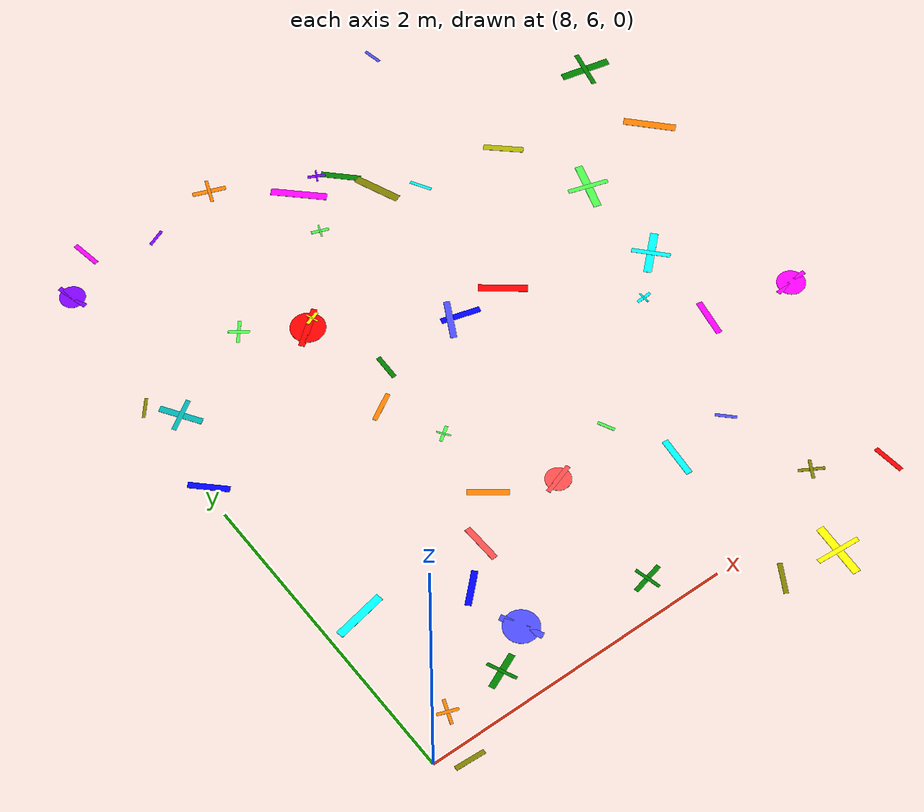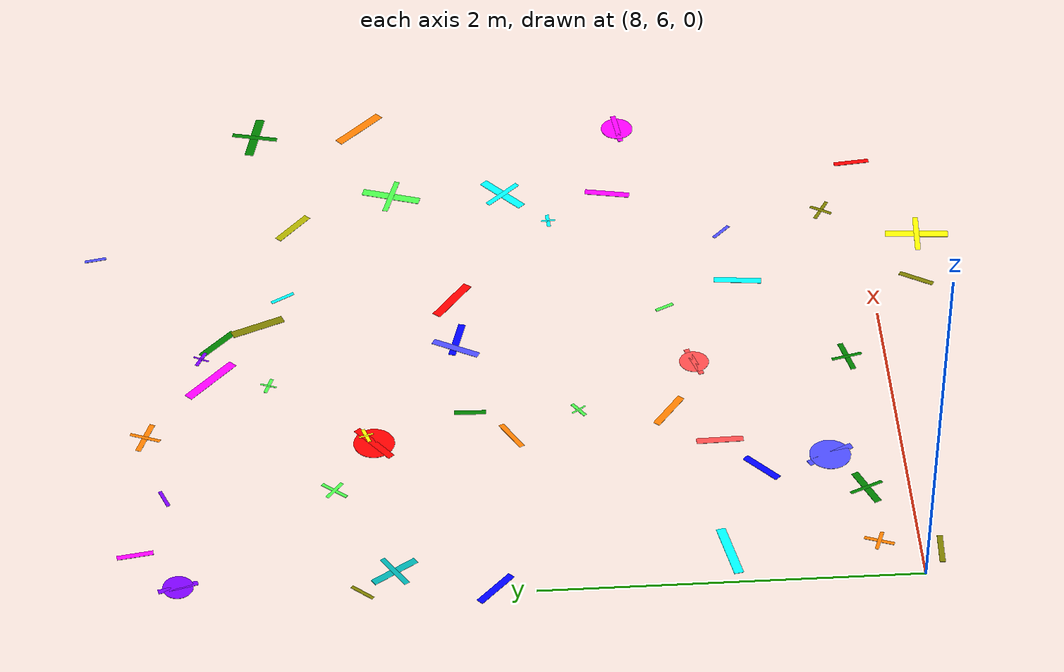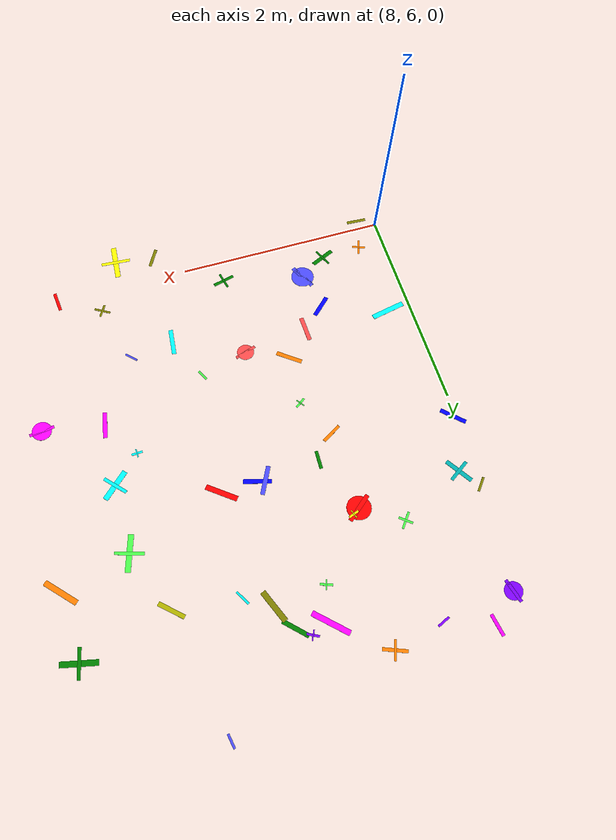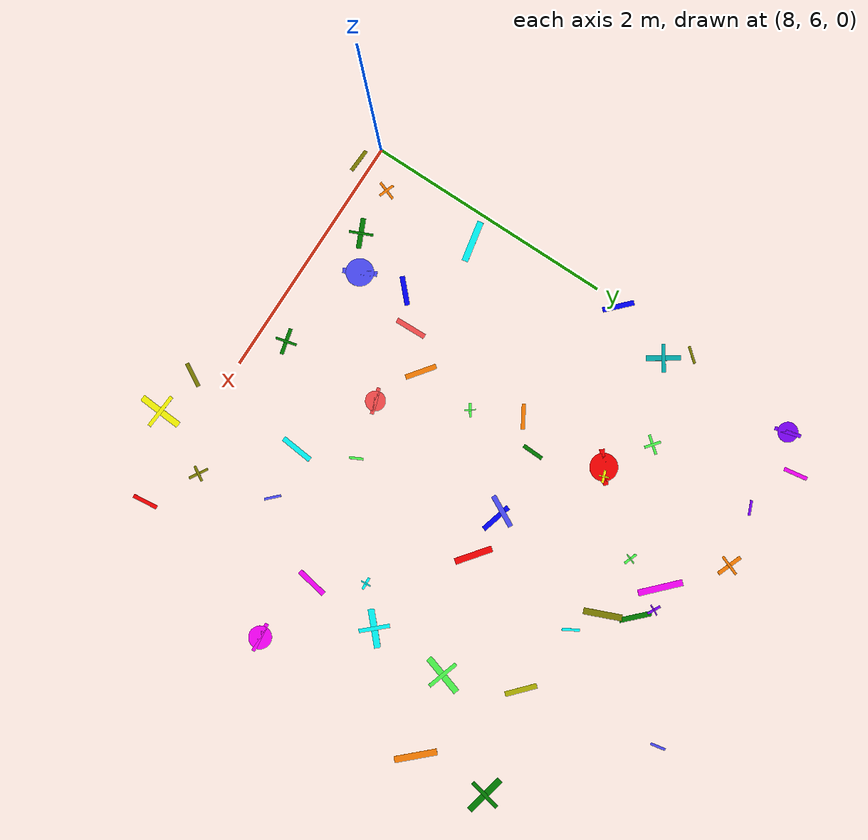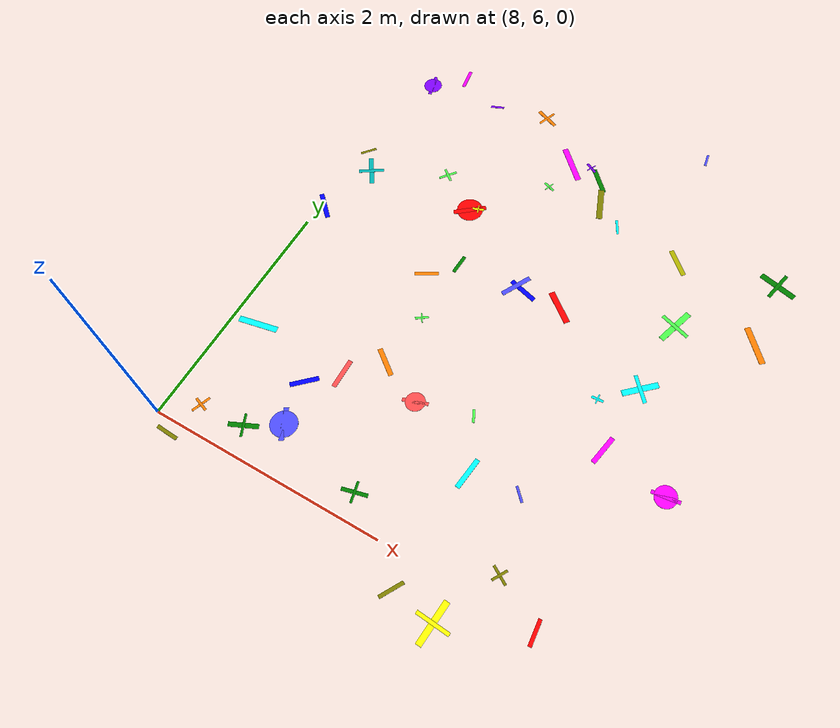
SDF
<sdf version="1.6">
 <world name="default">
  <model name="letter_T_1743">
   <static>true</static>
   <pose>8.25 6.21 0.006 0 0 1.222</pose>
   <link name="link">
    <visual name="visual">
     <geometry><box><size>0.16 0.02 0.002</size></box></geometry>
     <material>
      <ambient>1.0 0.5 0.0 1</ambient>
      <diffuse>1.0 0.5 0.0 1</diffuse>
      <specular>0.1 0.1 0.1 1</specular>
     </material>
    </visual>
    <visual name="visual2">
     <pose>0 0 0.001 0 0 1.57</pose>
     <geometry><box><size>0.13 0.02 0.001</size></box></geometry>
     <material><ambient>1.0 0.5 0.0 1</ambient><diffuse>1.0 0.5 0.0 1</diffuse></material>
    </visual>
   </link>
  </model>
  <model name="letter_N_1744">
   <static>true</static>
   <pose>8.17 5.90 0.007 0 0 3.088</pose>
   <link name="link">
    <visual name="visual">
     <geometry><box><size>0.19 0.03 0.002</size></box></geometry>
     <material>
      <ambient>0.5 0.5 0.0 1</ambient>
      <diffuse>0.5 0.5 0.0 1</diffuse>
      <specular>0.1 0.1 0.1 1</specular>
     </material>
    </visual>
   </link>
  </model>
  <model name="letter_W_1745">
   <static>true</static>
   <pose>8.22 6.99 0.010 0 0 0.194</pose>
   <link name="link">
    <visual name="visual">
     <geometry><box><size>0.33 0.05 0.002</size></box></geometry>
     <material>
      <ambient>0.0 1.0 1.0 1</ambient>
      <diffuse>0.0 1.0 1.0 1</diffuse>
      <specular>0.1 0.1 0.1 1</specular>
     </material>
    </visual>
   </link>
  </model>
  <model name="letter_P_1749">
   <static>true</static>
   <pose>8.03 8.21 0.005 0 0 2.374</pose>
   <link name="link">
    <visual name="visual">
     <geometry><box><size>0.25 0.04 0.002</size></box></geometry>
     <material>
      <ambient>0.0 0.0 1.0 1</ambient>
      <diffuse>0.0 0.0 1.0 1</diffuse>
      <specular>0.1 0.1 0.1 1</specular>
     </material>
    </visual>
   </link>
  </model>
  <model name="letter_H_1750">
   <static>true</static>
   <pose>8.18 8.72 0.010 0 0 5.293</pose>
   <link name="link">
    <visual name="visual">
     <geometry><box><size>0.27 0.04 0.002</size></box></geometry>
     <material>
      <ambient>0.0 0.7 0.7 1</ambient>
      <diffuse>0.0 0.7 0.7 1</diffuse>
      <specular>0.1 0.1 0.1 1</specular>
     </material>
    </visual>
    <visual name="visual2">
     <pose>0 0 0.001 0 0 1.57</pose>
     <geometry><box><size>0.22 0.03 0.001</size></box></geometry>
     <material><ambient>0.0 0.7 0.7 1</ambient><diffuse>0.0 0.7 0.7 1</diffuse></material>
    </visual>
   </link>
  </model>
  <model name="letter_U_1752">
   <static>true</static>
   <pose>8.04 8.89 0.010 0 0 0.874</pose>
   <link name="link">
    <visual name="visual">
     <geometry><box><size>0.14 0.02 0.002</size></box></geometry>
     <material>
      <ambient>0.5 0.5 0.0 1</ambient>
      <diffuse>0.5 0.5 0.0 1</diffuse>
      <specular>0.1 0.1 0.1 1</specular>
     </material>
    </visual>
   </link>
  </model>
  <model name="letter_P_1754">
   <static>true</static>
   <pose>8.38 10.05 0.008 0 0 4.869</pose>
   <link name="link">
    <visual name="visual">
     <geometry><box><size>0.19 0.03 0.002</size></box></geometry>
     <material>
      <ambient>1.0 0.0 1.0 1</ambient>
      <diffuse>1.0 0.0 1.0 1</diffuse>
      <specular>0.1 0.1 0.1 1</specular>
     </material>
    </visual>
   </link>
  </model>
  <model name="letter_O_1755">
   <static>true</static>
   <pose>8.14 9.83 0.004 0 0 4.973</pose>
   <link name="link">
    <visual name="visual">
     <geometry><box><size>0.21 0.03 0.002</size></box></geometry>
     <material>
      <ambient>0.5 0.0 1.0 1</ambient>
      <diffuse>0.5 0.0 1.0 1</diffuse>
      <specular>0.1 0.1 0.1 1</specular>
     </material>
    </visual>
    <visual name="visual2">
     <geometry><cylinder><radius>0.08</radius><length>0.002</length></cylinder></geometry>
     <material><ambient>0.5 0.0 1.0 1</ambient><diffuse>0.5 0.0 1.0 1</diffuse></material>
    </visual>
   </link>
  </model>
  <model name="letter_A_1823">
   <static>true</static>
   <pose>8.64 6.23 0.012 0 0 0.420</pose>
   <link name="link">
    <visual name="visual">
     <geometry><box><size>0.24 0.04 0.002</size></box></geometry>
     <material>
      <ambient>0.0 0.5 0.0 1</ambient>
      <diffuse>0.0 0.5 0.0 1</diffuse>
      <specular>0.1 0.1 0.1 1</specular>
     </material>
    </visual>
    <visual name="visual2">
     <pose>0 0 0.001 0 0 1.57</pose>
     <geometry><box><size>0.19 0.02 0.001</size></box></geometry>
     <material><ambient>0.0 0.5 0.0 1</ambient><diffuse>0.0 0.5 0.0 1</diffuse></material>
    </visual>
   </link>
  </model>
  <model name="letter_Q_1824">
   <static>true</static>
   <pose>8.90 6.39 0.010 0 0 2.037</pose>
   <link name="link">
    <visual name="visual">
     <geometry><box><size>0.27 0.04 0.002</size></box></geometry>
     <material>
      <ambient>0.3 0.3 1.0 1</ambient>
      <diffuse>0.3 0.3 1.0 1</diffuse>
      <specular>0.1 0.1 0.1 1</specular>
     </material>
    </visual>
    <visual name="visual2">
     <geometry><cylinder><radius>0.11</radius><length>0.002</length></cylinder></geometry>
     <material><ambient>0.3 0.3 1.0 1</ambient><diffuse>0.3 0.3 1.0 1</diffuse></material>
    </visual>
   </link>
  </model>
  <model name="letter_N_1825">
   <static>true</static>
   <pose>9.29 7.21 0.009 0 0 5.635</pose>
   <link name="link">
    <visual name="visual">
     <geometry><box><size>0.25 0.04 0.002</size></box></geometry>
     <material>
      <ambient>1.0 0.5 0.0 1</ambient>
      <diffuse>1.0 0.5 0.0 1</diffuse>
      <specular>0.1 0.1 0.1 1</specular>
     </material>
    </visual>
   </link>
  </model>
  <model name="letter_V_1826">
   <static>true</static>
   <pose>8.83 6.76 0.003 0 0 0.756</pose>
   <link name="link">
    <visual name="visual">
     <geometry><box><size>0.23 0.04 0.002</size></box></geometry>
     <material>
      <ambient>0.0 0.0 1.0 1</ambient>
      <diffuse>0.0 0.0 1.0 1</diffuse>
      <specular>0.1 0.1 0.1 1</specular>
     </material>
    </visual>
   </link>
  </model>
  <model name="letter_W_1827">
   <static>true</static>
   <pose>9.05 6.96 0.008 0 0 1.599</pose>
   <link name="link">
    <visual name="visual">
     <geometry><box><size>0.25 0.04 0.002</size></box></geometry>
     <material>
      <ambient>1.0 0.3 0.3 1</ambient>
      <diffuse>1.0 0.3 0.3 1</diffuse>
      <specular>0.1 0.1 0.1 1</specular>
     </material>
    </visual>
   </link>
  </model>
  <model name="letter_L_1828">
   <static>true</static>
   <pose>9.33 7.69 0.006 0 0 0.618</pose>
   <link name="link">
    <visual name="visual">
     <geometry><box><size>0.11 0.02 0.002</size></box></geometry>
     <material>
      <ambient>0.3 1.0 0.3 1</ambient>
      <diffuse>0.3 1.0 0.3 1</diffuse>
      <specular>0.1 0.1 0.1 1</specular>
     </material>
    </visual>
    <visual name="visual2">
     <pose>0 0 0.001 0 0 1.57</pose>
     <geometry><box><size>0.09 0.01 0.001</size></box></geometry>
     <material><ambient>0.3 1.0 0.3 1</ambient><diffuse>0.3 1.0 0.3 1</diffuse></material>
    </visual>
   </link>
  </model>
  <model name="letter_W_1829">
   <static>true</static>
   <pose>9.34 8.27 0.011 0 0 1.534</pose>
   <link name="link">
    <visual name="visual">
     <geometry><box><size>0.17 0.03 0.002</size></box></geometry>
     <material>
      <ambient>0.0 0.5 0.0 1</ambient>
      <diffuse>0.0 0.5 0.0 1</diffuse>
      <specular>0.1 0.1 0.1 1</specular>
     </material>
    </visual>
   </link>
  </model>
  <model name="letter_W_1830">
   <static>true</static>
   <pose>9.15 8.06 0.009 0 0 0.534</pose>
   <link name="link">
    <visual name="visual">
     <geometry><box><size>0.20 0.03 0.002</size></box></geometry>
     <material>
      <ambient>1.0 0.5 0.0 1</ambient>
      <diffuse>1.0 0.5 0.0 1</diffuse>
      <specular>0.1 0.1 0.1 1</specular>
     </material>
    </visual>
   </link>
  </model>
  <model name="letter_C_1831">
   <static>true</static>
   <pose>9.14 8.79 0.005 0 0 0.677</pose>
   <link name="link">
    <visual name="visual">
     <geometry><box><size>0.28 0.04 0.002</size></box></geometry>
     <material>
      <ambient>1.0 0.0 0.0 1</ambient>
      <diffuse>1.0 0.0 0.0 1</diffuse>
      <specular>0.1 0.1 0.1 1</specular>
     </material>
    </visual>
    <visual name="visual2">
     <geometry><cylinder><radius>0.11</radius><length>0.002</length></cylinder></geometry>
     <material><ambient>1.0 0.0 0.0 1</ambient><diffuse>1.0 0.0 0.0 1</diffuse></material>
    </visual>
   </link>
  </model>
  <model name="letter_H_1832">
   <static>true</static>
   <pose>8.79 9.01 0.011 0 0 4.037</pose>
   <link name="link">
    <visual name="visual">
     <geometry><box><size>0.16 0.02 0.002</size></box></geometry>
     <material>
      <ambient>0.3 1.0 0.3 1</ambient>
      <diffuse>0.3 1.0 0.3 1</diffuse>
      <specular>0.1 0.1 0.1 1</specular>
     </material>
    </visual>
    <visual name="visual2">
     <pose>0 0 0.001 0 0 1.57</pose>
     <geometry><box><size>0.13 0.02 0.001</size></box></geometry>
     <material><ambient>0.3 1.0 0.3 1</ambient><diffuse>0.3 1.0 0.3 1</diffuse></material>
    </visual>
   </link>
  </model>
  <model name="letter_E_1833">
   <static>true</static>
   <pose>9.20 8.83 0.006 0 0 3.483</pose>
   <link name="link">
    <visual name="visual">
     <geometry><box><size>0.10 0.02 0.002</size></box></geometry>
     <material>
      <ambient>1.0 1.0 0.0 1</ambient>
      <diffuse>1.0 1.0 0.0 1</diffuse>
      <specular>0.1 0.1 0.1 1</specular>
     </material>
    </visual>
    <visual name="visual2">
     <pose>0 0 0.001 0 0 1.57</pose>
     <geometry><box><size>0.08 0.01 0.001</size></box></geometry>
     <material><ambient>1.0 1.0 0.0 1</ambient><diffuse>1.0 1.0 0.0 1</diffuse></material>
    </visual>
   </link>
  </model>
  <model name="letter_T_1835">
   <static>true</static>
   <pose>9.25 10.00 0.012 0 0 5.915</pose>
   <link name="link">
    <visual name="visual">
     <geometry><box><size>0.21 0.03 0.002</size></box></geometry>
     <material>
      <ambient>1.0 0.5 0.0 1</ambient>
      <diffuse>1.0 0.5 0.0 1</diffuse>
      <specular>0.1 0.1 0.1 1</specular>
     </material>
    </visual>
    <visual name="visual2">
     <pose>0 0 0.001 0 0 1.57</pose>
     <geometry><box><size>0.17 0.02 0.001</size></box></geometry>
     <material><ambient>1.0 0.5 0.0 1</ambient><diffuse>1.0 0.5 0.0 1</diffuse></material>
    </visual>
   </link>
  </model>
  <model name="letter_Y_1836">
   <static>true</static>
   <pose>8.79 9.90 0.004 0 0 3.535</pose>
   <link name="link">
    <visual name="visual">
     <geometry><box><size>0.12 0.02 0.002</size></box></geometry>
     <material>
      <ambient>0.5 0.0 1.0 1</ambient>
      <diffuse>0.5 0.0 1.0 1</diffuse>
      <specular>0.1 0.1 0.1 1</specular>
     </material>
    </visual>
   </link>
  </model>
  <model name="letter_B_1904">
   <static>true</static>
   <pose>10.27 5.75 0.006 0 0 4.193</pose>
   <link name="link">
    <visual name="visual">
     <geometry><box><size>0.20 0.03 0.002</size></box></geometry>
     <material>
      <ambient>0.5 0.5 0.0 1</ambient>
      <diffuse>0.5 0.5 0.0 1</diffuse>
      <specular>0.1 0.1 0.1 1</specular>
     </material>
    </visual>
   </link>
  </model>
  <model name="letter_L_1905">
   <static>true</static>
   <pose>9.66 6.21 0.006 0 0 3.382</pose>
   <link name="link">
    <visual name="visual">
     <geometry><box><size>0.21 0.03 0.002</size></box></geometry>
     <material>
      <ambient>0.0 0.5 0.0 1</ambient>
      <diffuse>0.0 0.5 0.0 1</diffuse>
      <specular>0.1 0.1 0.1 1</specular>
     </material>
    </visual>
    <visual name="visual2">
     <pose>0 0 0.001 0 0 1.57</pose>
     <geometry><box><size>0.17 0.02 0.001</size></box></geometry>
     <material><ambient>0.0 0.5 0.0 1</ambient><diffuse>0.0 0.5 0.0 1</diffuse></material>
    </visual>
   </link>
  </model>
  <model name="letter_U_1906">
   <static>true</static>
   <pose>10.12 7.16 0.005 0 0 5.170</pose>
   <link name="link">
    <visual name="visual">
     <geometry><box><size>0.11 0.02 0.002</size></box></geometry>
     <material>
      <ambient>0.3 1.0 0.3 1</ambient>
      <diffuse>0.3 1.0 0.3 1</diffuse>
      <specular>0.1 0.1 0.1 1</specular>
     </material>
    </visual>
   </link>
  </model>
  <model name="letter_K_1907">
   <static>true</static>
   <pose>10.31 6.74 0.011 0 0 1.468</pose>
   <link name="link">
    <visual name="visual">
     <geometry><box><size>0.26 0.04 0.002</size></box></geometry>
     <material>
      <ambient>0.0 1.0 1.0 1</ambient>
      <diffuse>0.0 1.0 1.0 1</diffuse>
      <specular>0.1 0.1 0.1 1</specular>
     </material>
    </visual>
   </link>
  </model>
  <model name="letter_C_1908">
   <static>true</static>
   <pose>9.67 7.04 0.005 0 0 0.323</pose>
   <link name="link">
    <visual name="visual">
     <geometry><box><size>0.21 0.03 0.002</size></box></geometry>
     <material>
      <ambient>1.0 0.3 0.3 1</ambient>
      <diffuse>1.0 0.3 0.3 1</diffuse>
      <specular>0.1 0.1 0.1 1</specular>
     </material>
    </visual>
    <visual name="visual2">
     <geometry><cylinder><radius>0.08</radius><length>0.002</length></cylinder></geometry>
     <material><ambient>1.0 0.3 0.3 1</ambient><diffuse>1.0 0.3 0.3 1</diffuse></material>
    </visual>
   </link>
  </model>
  <model name="letter_D_1909">
   <static>true</static>
   <pose>9.92 8.31 0.010 0 0 6.011</pose>
   <link name="link">
    <visual name="visual">
     <geometry><box><size>0.25 0.04 0.002</size></box></geometry>
     <material>
      <ambient>0.0 0.0 1.0 1</ambient>
      <diffuse>0.0 0.0 1.0 1</diffuse>
      <specular>0.1 0.1 0.1 1</specular>
     </material>
    </visual>
   </link>
  </model>
  <model name="letter_Y_1910">
   <static>true</static>
   <pose>10.25 8.32 0.004 0 0 2.482</pose>
   <link name="link">
    <visual name="visual">
     <geometry><box><size>0.30 0.05 0.002</size></box></geometry>
     <material>
      <ambient>1.0 0.0 0.0 1</ambient>
      <diffuse>1.0 0.0 0.0 1</diffuse>
      <specular>0.1 0.1 0.1 1</specular>
     </material>
    </visual>
   </link>
  </model>
  <model name="letter_J_1911">
   <static>true</static>
   <pose>9.85 8.32 0.012 0 0 4.230</pose>
   <link name="link">
    <visual name="visual">
     <geometry><box><size>0.27 0.04 0.002</size></box></geometry>
     <material>
      <ambient>0.3 0.3 1.0 1</ambient>
      <diffuse>0.3 0.3 1.0 1</diffuse>
      <specular>0.1 0.1 0.1 1</specular>
     </material>
    </visual>
   </link>
  </model>
  <model name="letter_P_1912">
   <static>true</static>
   <pose>10.32 9.25 0.009 0 0 2.090</pose>
   <link name="link">
    <visual name="visual">
     <geometry><box><size>0.14 0.02 0.002</size></box></geometry>
     <material>
      <ambient>0.0 1.0 1.0 1</ambient>
      <diffuse>0.0 1.0 1.0 1</diffuse>
      <specular>0.1 0.1 0.1 1</specular>
     </material>
    </visual>
   </link>
  </model>
  <model name="letter_L_1913">
   <static>true</static>
   <pose>9.62 9.34 0.006 0 0 2.793</pose>
   <link name="link">
    <visual name="visual">
     <geometry><box><size>0.11 0.02 0.002</size></box></geometry>
     <material>
      <ambient>0.3 1.0 0.3 1</ambient>
      <diffuse>0.3 1.0 0.3 1</diffuse>
      <specular>0.1 0.1 0.1 1</specular>
     </material>
    </visual>
    <visual name="visual2">
     <pose>0 0 0.001 0 0 1.57</pose>
     <geometry><box><size>0.09 0.01 0.001</size></box></geometry>
     <material><ambient>0.3 1.0 0.3 1</ambient><diffuse>0.3 1.0 0.3 1</diffuse></material>
    </visual>
   </link>
  </model>
  <model name="letter_D_1914">
   <static>true</static>
   <pose>10.09 9.39 0.011 0 0 5.102</pose>
   <link name="link">
    <visual name="visual">
     <geometry><box><size>0.30 0.05 0.002</size></box></geometry>
     <material>
      <ambient>0.5 0.5 0.0 1</ambient>
      <diffuse>0.5 0.5 0.0 1</diffuse>
      <specular>0.1 0.1 0.1 1</specular>
     </material>
    </visual>
   </link>
  </model>
  <model name="letter_Z_1915">
   <static>true</static>
   <pose>9.68 9.65 0.008 0 0 2.377</pose>
   <link name="link">
    <visual name="visual">
     <geometry><box><size>0.35 0.05 0.002</size></box></geometry>
     <material>
      <ambient>1.0 0.0 1.0 1</ambient>
      <diffuse>1.0 0.0 1.0 1</diffuse>
      <specular>0.1 0.1 0.1 1</specular>
     </material>
    </visual>
   </link>
  </model>
  <model name="letter_A_1916">
   <static>true</static>
   <pose>9.85 9.70 0.009 0 0 5.810</pose>
   <link name="link">
    <visual name="visual">
     <geometry><box><size>0.11 0.02 0.002</size></box></geometry>
     <material>
      <ambient>0.5 0.0 1.0 1</ambient>
      <diffuse>0.5 0.0 1.0 1</diffuse>
      <specular>0.1 0.1 0.1 1</specular>
     </material>
    </visual>
    <visual name="visual2">
     <pose>0 0 0.001 0 0 1.57</pose>
     <geometry><box><size>0.09 0.01 0.001</size></box></geometry>
     <material><ambient>0.5 0.0 1.0 1</ambient><diffuse>0.5 0.0 1.0 1</diffuse></material>
    </visual>
   </link>
  </model>
  <model name="letter_D_1917">
   <static>true</static>
   <pose>9.97 9.61 0.006 0 0 2.360</pose>
   <link name="link">
    <visual name="visual">
     <geometry><box><size>0.25 0.04 0.002</size></box></geometry>
     <material>
      <ambient>0.0 0.5 0.0 1</ambient>
      <diffuse>0.0 0.5 0.0 1</diffuse>
      <specular>0.1 0.1 0.1 1</specular>
     </material>
    </visual>
   </link>
  </model>
  <model name="letter_H_1984">
   <static>true</static>
   <pose>10.88 6.21 0.004 0 0 2.612</pose>
   <link name="link">
    <visual name="visual">
     <geometry><box><size>0.16 0.02 0.002</size></box></geometry>
     <material>
      <ambient>0.5 0.5 0.0 1</ambient>
      <diffuse>0.5 0.5 0.0 1</diffuse>
      <specular>0.1 0.1 0.1 1</specular>
     </material>
    </visual>
    <visual name="visual2">
     <pose>0 0 0.001 0 0 1.57</pose>
     <geometry><box><size>0.13 0.02 0.001</size></box></geometry>
     <material><ambient>0.5 0.5 0.0 1</ambient><diffuse>0.5 0.5 0.0 1</diffuse></material>
    </visual>
   </link>
  </model>
  <model name="letter_E_1985">
   <static>true</static>
   <pose>10.64 5.70 0.009 0 0 4.642</pose>
   <link name="link">
    <visual name="visual">
     <geometry><box><size>0.35 0.05 0.002</size></box></geometry>
     <material>
      <ambient>1.0 1.0 0.0 1</ambient>
      <diffuse>1.0 1.0 0.0 1</diffuse>
      <specular>0.1 0.1 0.1 1</specular>
     </material>
    </visual>
    <visual name="visual2">
     <pose>0 0 0.001 0 0 1.57</pose>
     <geometry><box><size>0.28 0.03 0.001</size></box></geometry>
     <material><ambient>1.0 1.0 0.0 1</ambient><diffuse>1.0 1.0 0.0 1</diffuse></material>
    </visual>
   </link>
  </model>
  <model name="letter_K_1986">
   <static>true</static>
   <pose>11.28 5.99 0.008 0 0 1.677</pose>
   <link name="link">
    <visual name="visual">
     <geometry><box><size>0.20 0.03 0.002</size></box></geometry>
     <material>
      <ambient>1.0 0.0 0.0 1</ambient>
      <diffuse>1.0 0.0 0.0 1</diffuse>
      <specular>0.1 0.1 0.1 1</specular>
     </material>
    </visual>
   </link>
  </model>
  <model name="letter_P_1987">
   <static>true</static>
   <pose>11.10 7.40 0.004 0 0 1.390</pose>
   <link name="link">
    <visual name="visual">
     <geometry><box><size>0.25 0.04 0.002</size></box></geometry>
     <material>
      <ambient>1.0 0.0 1.0 1</ambient>
      <diffuse>1.0 0.0 1.0 1</diffuse>
      <specular>0.1 0.1 0.1 1</specular>
     </material>
    </visual>
   </link>
  </model>
  <model name="letter_U_1988">
   <static>true</static>
   <pose>10.72 6.79 0.012 0 0 5.501</pose>
   <link name="link">
    <visual name="visual">
     <geometry><box><size>0.13 0.02 0.002</size></box></geometry>
     <material>
      <ambient>0.3 0.3 1.0 1</ambient>
      <diffuse>0.3 0.3 1.0 1</diffuse>
      <specular>0.1 0.1 0.1 1</specular>
     </material>
    </visual>
   </link>
  </model>
  <model name="letter_L_1989">
   <static>true</static>
   <pose>11.13 7.99 0.003 0 0 3.890</pose>
   <link name="link">
    <visual name="visual">
     <geometry><box><size>0.30 0.05 0.002</size></box></geometry>
     <material>
      <ambient>0.0 1.0 1.0 1</ambient>
      <diffuse>0.0 1.0 1.0 1</diffuse>
      <specular>0.1 0.1 0.1 1</specular>
     </material>
    </visual>
    <visual name="visual2">
     <pose>0 0 0.001 0 0 1.57</pose>
     <geometry><box><size>0.24 0.03 0.001</size></box></geometry>
     <material><ambient>0.0 1.0 1.0 1</ambient><diffuse>0.0 1.0 1.0 1</diffuse></material>
    </visual>
   </link>
  </model>
  <model name="letter_F_1990">
   <static>true</static>
   <pose>10.88 7.75 0.008 0 0 0.058</pose>
   <link name="link">
    <visual name="visual">
     <geometry><box><size>0.10 0.02 0.002</size></box></geometry>
     <material>
      <ambient>0.0 1.0 1.0 1</ambient>
      <diffuse>0.0 1.0 1.0 1</diffuse>
      <specular>0.1 0.1 0.1 1</specular>
     </material>
    </visual>
    <visual name="visual2">
     <pose>0 0 0.001 0 0 1.57</pose>
     <geometry><box><size>0.08 0.01 0.001</size></box></geometry>
     <material><ambient>0.0 1.0 1.0 1</ambient><diffuse>0.0 1.0 1.0 1</diffuse></material>
    </visual>
   </link>
  </model>
  <model name="letter_W_1991">
   <static>true</static>
   <pose>10.91 9.18 0.004 0 0 2.404</pose>
   <link name="link">
    <visual name="visual">
     <geometry><box><size>0.25 0.04 0.002</size></box></geometry>
     <material>
      <ambient>0.7 0.7 0.0 1</ambient>
      <diffuse>0.7 0.7 0.0 1</diffuse>
      <specular>0.1 0.1 0.1 1</specular>
     </material>
    </visual>
   </link>
  </model>
  <model name="letter_I_1992">
   <static>true</static>
   <pose>11.14 8.62 0.012 0 0 1.268</pose>
   <link name="link">
    <visual name="visual">
     <geometry><box><size>0.33 0.05 0.002</size></box></geometry>
     <material>
      <ambient>0.3 1.0 0.3 1</ambient>
      <diffuse>0.3 1.0 0.3 1</diffuse>
      <specular>0.1 0.1 0.1 1</specular>
     </material>
    </visual>
    <visual name="visual2">
     <pose>0 0 0.001 0 0 1.57</pose>
     <geometry><box><size>0.26 0.03 0.001</size></box></geometry>
     <material><ambient>0.3 1.0 0.3 1</ambient><diffuse>0.3 1.0 0.3 1</diffuse></material>
    </visual>
   </link>
  </model>
  <model name="letter_D_1993">
   <static>true</static>
   <pose>10.70 10.28 0.009 0 0 4.895</pose>
   <link name="link">
    <visual name="visual">
     <geometry><box><size>0.12 0.02 0.002</size></box></geometry>
     <material>
      <ambient>0.3 0.3 1.0 1</ambient>
      <diffuse>0.3 0.3 1.0 1</diffuse>
      <specular>0.1 0.1 0.1 1</specular>
     </material>
    </visual>
   </link>
  </model>
  <model name="letter_Q_2061">
   <static>true</static>
   <pose>11.66 7.30 0.011 0 0 0.117</pose>
   <link name="link">
    <visual name="visual">
     <geometry><box><size>0.23 0.03 0.002</size></box></geometry>
     <material>
      <ambient>1.0 0.0 1.0 1</ambient>
      <diffuse>1.0 0.0 1.0 1</diffuse>
      <specular>0.1 0.1 0.1 1</specular>
     </material>
    </visual>
    <visual name="visual2">
     <geometry><cylinder><radius>0.09</radius><length>0.002</length></cylinder></geometry>
     <material><ambient>1.0 0.0 1.0 1</ambient><diffuse>1.0 0.0 1.0 1</diffuse></material>
    </visual>
   </link>
  </model>
  <model name="letter_J_2066">
   <static>true</static>
   <pose>11.76 8.78 0.003 0 0 2.327</pose>
   <link name="link">
    <visual name="visual">
     <geometry><box><size>0.33 0.05 0.002</size></box></geometry>
     <material>
      <ambient>1.0 0.5 0.0 1</ambient>
      <diffuse>1.0 0.5 0.0 1</diffuse>
      <specular>0.1 0.1 0.1 1</specular>
     </material>
    </visual>
   </link>
  </model>
  <model name="letter_E_2067">
   <static>true</static>
   <pose>11.72 9.38 0.003 0 0 6.062</pose>
   <link name="link">
    <visual name="visual">
     <geometry><box><size>0.32 0.05 0.002</size></box></geometry>
     <material>
      <ambient>0.0 0.5 0.0 1</ambient>
      <diffuse>0.0 0.5 0.0 1</diffuse>
      <specular>0.1 0.1 0.1 1</specular>
     </material>
    </visual>
    <visual name="visual2">
     <pose>0 0 0.001 0 0 1.57</pose>
     <geometry><box><size>0.26 0.03 0.001</size></box></geometry>
     <material><ambient>0.0 0.5 0.0 1</ambient><diffuse>0.0 0.5 0.0 1</diffuse></material>
    </visual>
   </link>
  </model>
 </world>
</sdf>
